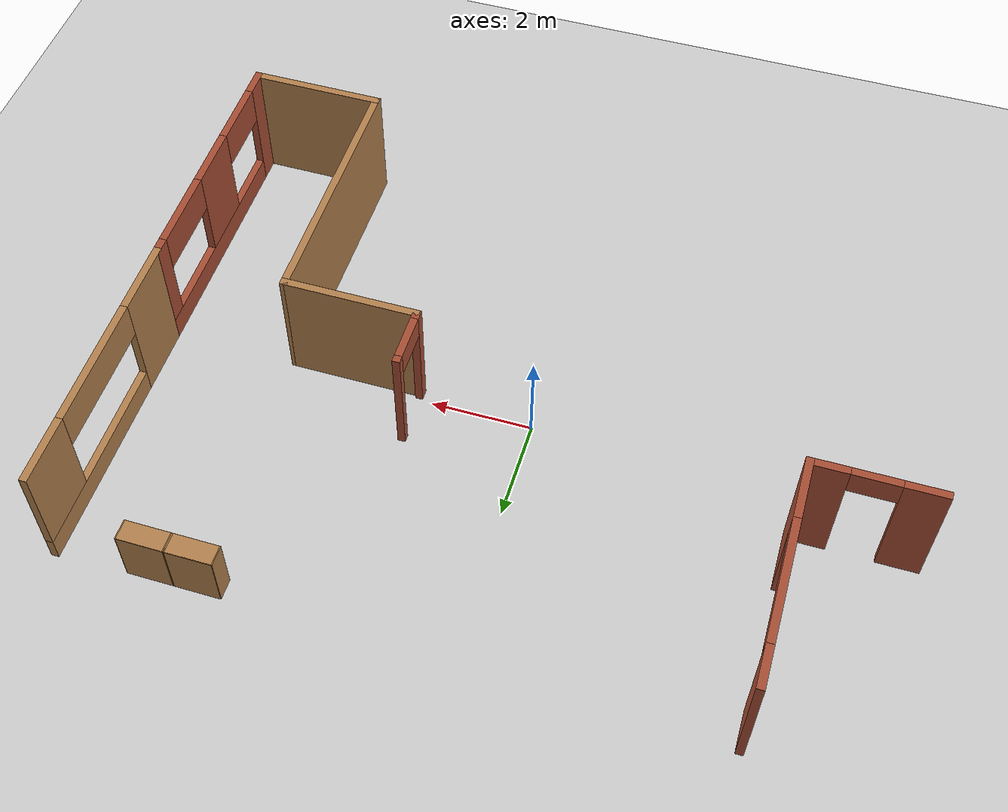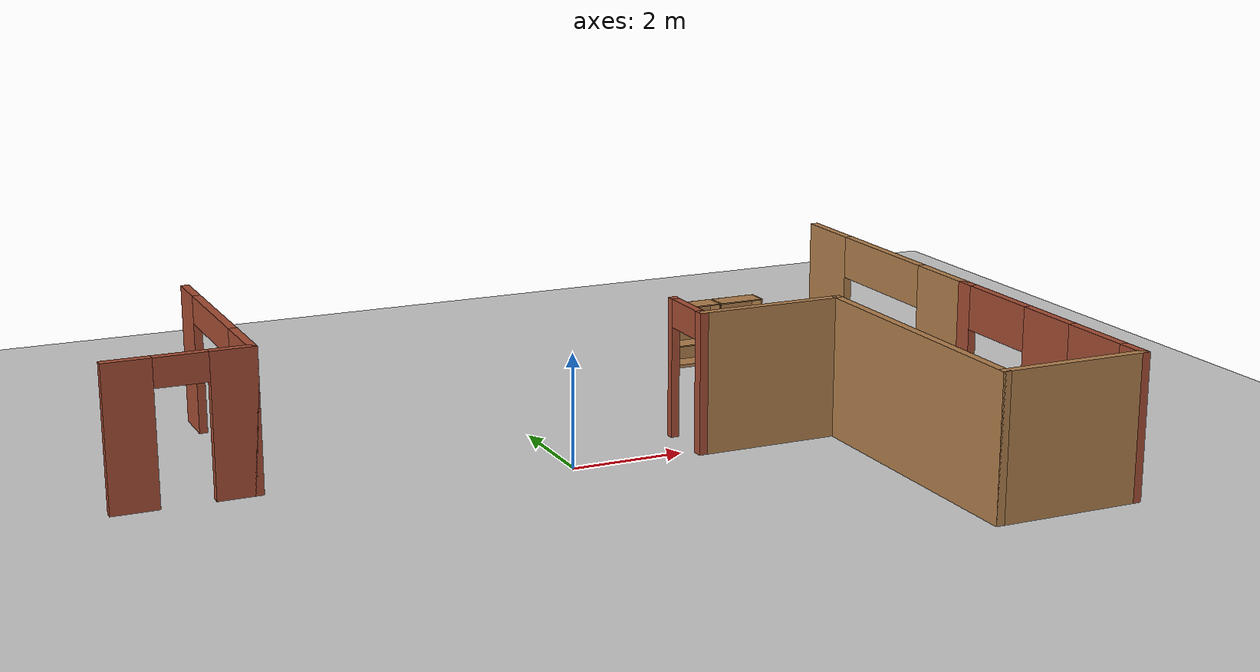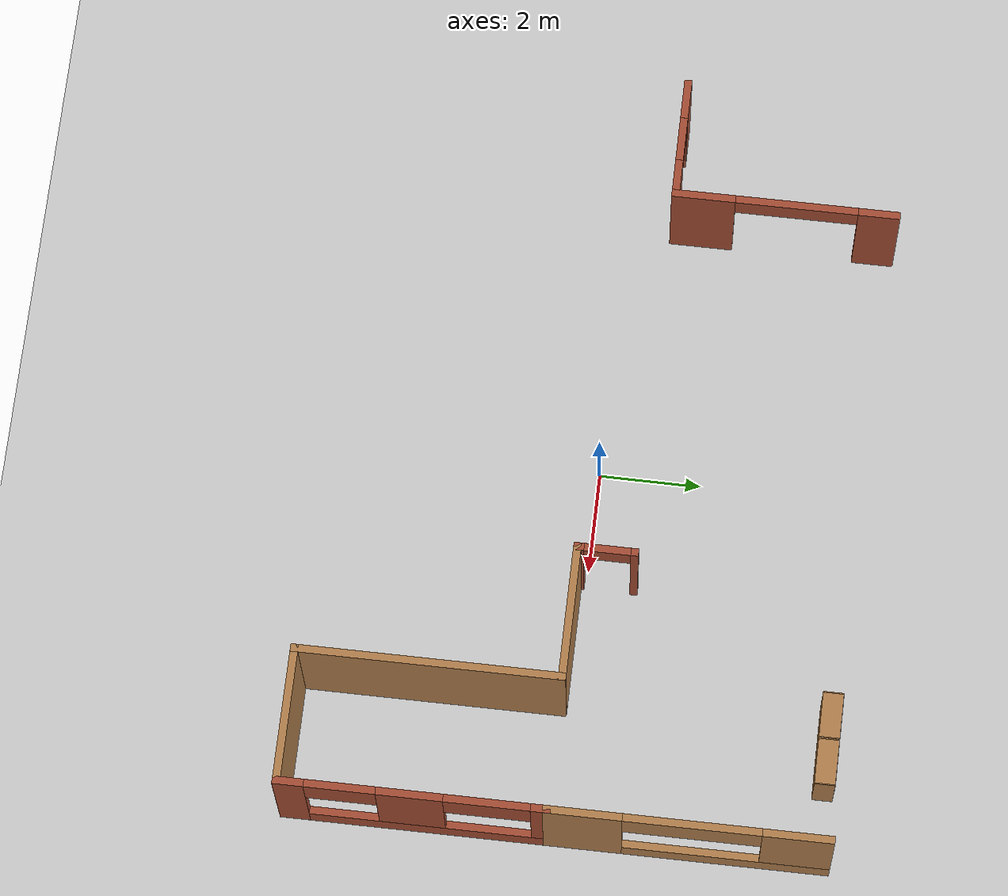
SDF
<sdf version="1.7">
 <world name="simple_house">
  <model name="ground_plane">
   <static>1</static>
   <link name="link">
    <collision name="collision">
     <geometry><plane><normal>0 0 1</normal><size>100 100</size></plane></geometry>
     <surface><friction><ode><mu>100</mu><mu2>50</mu2></ode></friction></surface>
    </collision>
    <visual name="visual">
     <cast_shadows>0</cast_shadows>
     <geometry><plane><normal>0 0 1</normal><size>100 100</size></plane></geometry>
     <material>
      <script><uri>file://media/materials/scripts/gazebo.material</uri><name>Gazebo/Grey</name></script>
     </material>
    </visual>
   </link>
  </model>
  <model name="Wall_91">
   <static>1</static>
   <link name="Wall_91_link">
    <pose>2.29994 0.37506 0 0 0 -1.57091</pose>
    <visual name="Wall_91_Visual_0">
     <pose>-0.551501 0 1.25 0 -0 0</pose>
     <geometry><box><size>0.146998 0.15 2.5</size></box></geometry>
     <material>
      <script><uri>file://media/materials/scripts/gazebo.material</uri><name>Gazebo/Bricks</name></script>
      <ambient>1 1 1 1</ambient>
      <diffuse>1 1 1 1</diffuse>
      <specular>0.2 0.2 0.2 1</specular>
      <emissive>0 0 0 1</emissive>
     </material>
    </visual>
    <visual name="Wall_91_Visual_2">
     <pose>-0.028002 0 2.25 0 -0 0</pose>
     <geometry><box><size>0.9 0.15 0.5</size></box></geometry>
     <material>
      <script><uri>file://media/materials/scripts/gazebo.material</uri><name>Gazebo/Bricks</name></script>
      <ambient>1 1 1 1</ambient>
      <diffuse>1 1 1 1</diffuse>
      <specular>0.2 0.2 0.2 1</specular>
      <emissive>0 0 0 1</emissive>
     </material>
    </visual>
    <visual name="Wall_91_Visual_1">
     <pose>0.523499 0 1.25 0 -0 0</pose>
     <geometry><box><size>0.203002 0.15 2.5</size></box></geometry>
     <material>
      <script><uri>file://media/materials/scripts/gazebo.material</uri><name>Gazebo/Bricks</name></script>
      <ambient>1 1 1 1</ambient>
      <diffuse>1 1 1 1</diffuse>
      <specular>0.2 0.2 0.2 1</specular>
      <emissive>0 0 0 1</emissive>
     </material>
    </visual>
    <collision name="Wall_91_Collision_0">
     <pose>-0.551501 0 1.25 0 -0 0</pose>
     <geometry><box><size>0.146998 0.15 2.5</size></box></geometry>
     <surface>
      <friction>
       <ode><mu>1</mu><mu2>1</mu2><fdir1>0 0 0</fdir1><slip1>0</slip1><slip2>0</slip2></ode>
       <torsional>
        <coefficient>1</coefficient>
        <patch_radius>0</patch_radius>
        <surface_radius>0</surface_radius>
        <use_patch_radius>1</use_patch_radius>
        <ode><slip>0</slip></ode>
       </torsional>
      </friction>
      <bounce><restitution_coefficient>0</restitution_coefficient><threshold>1e+06</threshold></bounce>
      <contact>
       <collide_without_contact>0</collide_without_contact>
       <collide_without_contact_bitmask>1</collide_without_contact_bitmask>
       <collide_bitmask>1</collide_bitmask>
       <ode>
        <soft_cfm>0</soft_cfm>
        <soft_erp>0.2</soft_erp>
        <kp>1e+13</kp>
        <kd>1</kd>
        <max_vel>0.01</max_vel>
        <min_depth>0</min_depth>
       </ode>
       <bullet>
        <split_impulse>1</split_impulse>
        <split_impulse_penetration_threshold>-0.01</split_impulse_penetration_threshold>
        <soft_cfm>0</soft_cfm>
        <soft_erp>0.2</soft_erp>
        <kp>1e+13</kp>
        <kd>1</kd>
       </bullet>
      </contact>
     </surface>
    </collision>
    <collision name="Wall_91_Collision_1">
     <pose>0.523499 0 1.25 0 -0 0</pose>
     <geometry><box><size>0.203002 0.15 2.5</size></box></geometry>
     <surface>
      <friction>
       <ode><mu>1</mu><mu2>1</mu2><fdir1>0 0 0</fdir1><slip1>0</slip1><slip2>0</slip2></ode>
       <torsional>
        <coefficient>1</coefficient>
        <patch_radius>0</patch_radius>
        <surface_radius>0</surface_radius>
        <use_patch_radius>1</use_patch_radius>
        <ode><slip>0</slip></ode>
       </torsional>
      </friction>
      <bounce><restitution_coefficient>0</restitution_coefficient><threshold>1e+06</threshold></bounce>
      <contact>
       <collide_without_contact>0</collide_without_contact>
       <collide_without_contact_bitmask>1</collide_without_contact_bitmask>
       <collide_bitmask>1</collide_bitmask>
       <ode>
        <soft_cfm>0</soft_cfm>
        <soft_erp>0.2</soft_erp>
        <kp>1e+13</kp>
        <kd>1</kd>
        <max_vel>0.01</max_vel>
        <min_depth>0</min_depth>
       </ode>
       <bullet>
        <split_impulse>1</split_impulse>
        <split_impulse_penetration_threshold>-0.01</split_impulse_penetration_threshold>
        <soft_cfm>0</soft_cfm>
        <soft_erp>0.2</soft_erp>
        <kp>1e+13</kp>
        <kd>1</kd>
       </bullet>
      </contact>
     </surface>
    </collision>
    <collision name="Wall_91_Collision_2">
     <pose>-0.028002 0 2.25 0 -0 0</pose>
     <geometry><box><size>0.9 0.15 0.5</size></box></geometry>
     <surface>
      <friction>
       <ode><mu>1</mu><mu2>1</mu2><fdir1>0 0 0</fdir1><slip1>0</slip1><slip2>0</slip2></ode>
       <torsional>
        <coefficient>1</coefficient>
        <patch_radius>0</patch_radius>
        <surface_radius>0</surface_radius>
        <use_patch_radius>1</use_patch_radius>
        <ode><slip>0</slip></ode>
       </torsional>
      </friction>
      <bounce><restitution_coefficient>0</restitution_coefficient><threshold>1e+06</threshold></bounce>
      <contact>
       <collide_without_contact>0</collide_without_contact>
       <collide_without_contact_bitmask>1</collide_without_contact_bitmask>
       <collide_bitmask>1</collide_bitmask>
       <ode>
        <soft_cfm>0</soft_cfm>
        <soft_erp>0.2</soft_erp>
        <kp>1e+13</kp>
        <kd>1</kd>
        <max_vel>0.01</max_vel>
        <min_depth>0</min_depth>
       </ode>
       <bullet>
        <split_impulse>1</split_impulse>
        <split_impulse_penetration_threshold>-0.01</split_impulse_penetration_threshold>
        <soft_cfm>0</soft_cfm>
        <soft_erp>0.2</soft_erp>
        <kp>1e+13</kp>
        <kd>1</kd>
       </bullet>
      </contact>
     </surface>
    </collision>
   </link>
  </model>
  <model name="Wall_92">
   <static>1</static>
   <link name="Wall_92_link">
    <pose>3.59994 -0.17494 0 0 0 -4.6e-05</pose>
    <visual name="Wall_92_Visual">
     <pose>0 0 1.25 0 -0 0</pose>
     <geometry><box><size>2.75 0.15 2.5</size></box></geometry>
     <material>
      <script><uri>file://media/materials/scripts/gazebo.material</uri><name>Gazebo/Wood</name></script>
      <ambient>1 1 1 1</ambient>
      <diffuse>1 1 1 1</diffuse>
      <specular>0.2 0.2 0.2 1</specular>
      <emissive>0 0 0 1</emissive>
     </material>
    </visual>
    <collision name="Wall_92_Collision">
     <pose>0 0 1.25 0 -0 0</pose>
     <geometry><box><size>2.75 0.15 2.5</size></box></geometry>
     <surface>
      <friction>
       <ode><mu>1</mu><mu2>1</mu2><fdir1>0 0 0</fdir1><slip1>0</slip1><slip2>0</slip2></ode>
       <torsional>
        <coefficient>1</coefficient>
        <patch_radius>0</patch_radius>
        <surface_radius>0</surface_radius>
        <use_patch_radius>1</use_patch_radius>
        <ode><slip>0</slip></ode>
       </torsional>
      </friction>
      <bounce><restitution_coefficient>0</restitution_coefficient><threshold>1e+06</threshold></bounce>
      <contact>
       <collide_without_contact>0</collide_without_contact>
       <collide_without_contact_bitmask>1</collide_without_contact_bitmask>
       <collide_bitmask>1</collide_bitmask>
       <ode>
        <soft_cfm>0</soft_cfm>
        <soft_erp>0.2</soft_erp>
        <kp>1e+13</kp>
        <kd>1</kd>
        <max_vel>0.01</max_vel>
        <min_depth>0</min_depth>
       </ode>
       <bullet>
        <split_impulse>1</split_impulse>
        <split_impulse_penetration_threshold>-0.01</split_impulse_penetration_threshold>
        <soft_cfm>0</soft_cfm>
        <soft_erp>0.2</soft_erp>
        <kp>1e+13</kp>
        <kd>1</kd>
       </bullet>
      </contact>
     </surface>
    </collision>
   </link>
  </model>
  <model name="Wall_93">
   <static>1</static>
   <link name="Wall_93_link">
    <pose>4.9 -2.725 0 0 0 -1.5708</pose>
    <visual name="Wall_93_Visual">
     <pose>0 0 1.25 0 -0 0</pose>
     <geometry><box><size>5.25 0.15 2.5</size></box></geometry>
     <material>
      <script><uri>file://media/materials/scripts/gazebo.material</uri><name>Gazebo/Wood</name></script>
      <ambient>1 1 1 1</ambient>
      <diffuse>1 1 1 1</diffuse>
      <specular>0.2 0.2 0.2 1</specular>
      <emissive>0 0 0 1</emissive>
     </material>
    </visual>
    <collision name="Wall_93_Collision">
     <pose>0 0 1.25 0 -0 0</pose>
     <geometry><box><size>5.25 0.15 2.5</size></box></geometry>
     <surface>
      <friction>
       <ode><mu>1</mu><mu2>1</mu2><fdir1>0 0 0</fdir1><slip1>0</slip1><slip2>0</slip2></ode>
       <torsional>
        <coefficient>1</coefficient>
        <patch_radius>0</patch_radius>
        <surface_radius>0</surface_radius>
        <use_patch_radius>1</use_patch_radius>
        <ode><slip>0</slip></ode>
       </torsional>
      </friction>
      <bounce><restitution_coefficient>0</restitution_coefficient><threshold>1e+06</threshold></bounce>
      <contact>
       <collide_without_contact>0</collide_without_contact>
       <collide_without_contact_bitmask>1</collide_without_contact_bitmask>
       <collide_bitmask>1</collide_bitmask>
       <ode>
        <soft_cfm>0</soft_cfm>
        <soft_erp>0.2</soft_erp>
        <kp>1e+13</kp>
        <kd>1</kd>
        <max_vel>0.01</max_vel>
        <min_depth>0</min_depth>
       </ode>
       <bullet>
        <split_impulse>1</split_impulse>
        <split_impulse_penetration_threshold>-0.01</split_impulse_penetration_threshold>
        <soft_cfm>0</soft_cfm>
        <soft_erp>0.2</soft_erp>
        <kp>1e+13</kp>
        <kd>1</kd>
       </bullet>
      </contact>
     </surface>
    </collision>
   </link>
  </model>
  <model name="Wall_94">
   <static>1</static>
   <link name="Wall_94_link">
    <pose>6.2 -5.275 0 0 -0 0</pose>
    <visual name="Wall_94_Visual">
     <pose>0 0 1.25 0 -0 0</pose>
     <geometry><box><size>2.75 0.15 2.5</size></box></geometry>
     <material>
      <script><uri>file://media/materials/scripts/gazebo.material</uri><name>Gazebo/Wood</name></script>
      <ambient>1 1 1 1</ambient>
      <diffuse>1 1 1 1</diffuse>
      <specular>0.2 0.2 0.2 1</specular>
      <emissive>0 0 0 1</emissive>
     </material>
    </visual>
    <collision name="Wall_94_Collision">
     <pose>0 0 1.25 0 -0 0</pose>
     <geometry><box><size>2.75 0.15 2.5</size></box></geometry>
     <surface>
      <friction>
       <ode><mu>1</mu><mu2>1</mu2><fdir1>0 0 0</fdir1><slip1>0</slip1><slip2>0</slip2></ode>
       <torsional>
        <coefficient>1</coefficient>
        <patch_radius>0</patch_radius>
        <surface_radius>0</surface_radius>
        <use_patch_radius>1</use_patch_radius>
        <ode><slip>0</slip></ode>
       </torsional>
      </friction>
      <bounce><restitution_coefficient>0</restitution_coefficient><threshold>1e+06</threshold></bounce>
      <contact>
       <collide_without_contact>0</collide_without_contact>
       <collide_without_contact_bitmask>1</collide_without_contact_bitmask>
       <collide_bitmask>1</collide_bitmask>
       <ode>
        <soft_cfm>0</soft_cfm>
        <soft_erp>0.2</soft_erp>
        <kp>1e+13</kp>
        <kd>1</kd>
        <max_vel>0.01</max_vel>
        <min_depth>0</min_depth>
       </ode>
       <bullet>
        <split_impulse>1</split_impulse>
        <split_impulse_penetration_threshold>-0.01</split_impulse_penetration_threshold>
        <soft_cfm>0</soft_cfm>
        <soft_erp>0.2</soft_erp>
        <kp>1e+13</kp>
        <kd>1</kd>
       </bullet>
      </contact>
     </surface>
    </collision>
   </link>
  </model>
  <model name="Wall_95">
   <static>1</static>
   <link name="Wall_95_link">
    <pose>7.5 -2.725 0 0 -0 1.5708</pose>
    <visual name="Wall_95_Visual_1">
     <pose>0.295715 0 0.25 0 -0 0</pose>
     <geometry><box><size>4.65857 0.15 0.5</size></box></geometry>
     <material>
      <script><uri>file://media/materials/scripts/gazebo.material</uri><name>Gazebo/Bricks</name></script>
      <ambient>1 1 1 1</ambient>
      <diffuse>1 1 1 1</diffuse>
      <specular>0.2 0.2 0.2 1</specular>
      <emissive>0 0 0 1</emissive>
     </material>
    </visual>
    <visual name="Wall_95_Visual_2">
     <pose>-0.036959 0 1.5 0 -0 0</pose>
     <geometry><box><size>1.27522 0.15 2</size></box></geometry>
     <material>
      <script><uri>file://media/materials/scripts/gazebo.material</uri><name>Gazebo/Bricks</name></script>
      <ambient>1 1 1 1</ambient>
      <diffuse>1 1 1 1</diffuse>
      <specular>0.2 0.2 0.2 1</specular>
      <emissive>0 0 0 1</emissive>
     </material>
    </visual>
    <visual name="Wall_95_Visual_3">
     <pose>2.43783 0 1.5 0 -0 0</pose>
     <geometry><box><size>0.374348 0.15 2</size></box></geometry>
     <material>
      <script><uri>file://media/materials/scripts/gazebo.material</uri><name>Gazebo/Bricks</name></script>
      <ambient>1 1 1 1</ambient>
      <diffuse>1 1 1 1</diffuse>
      <specular>0.2 0.2 0.2 1</specular>
      <emissive>0 0 0 1</emissive>
     </material>
    </visual>
    <visual name="Wall_95_Visual_5">
     <pose>1.42565 0 2.1 0 -0 0</pose>
     <geometry><box><size>1.65 0.15 0.8</size></box></geometry>
     <material>
      <script><uri>file://media/materials/scripts/gazebo.material</uri><name>Gazebo/Bricks</name></script>
      <ambient>1 1 1 1</ambient>
      <diffuse>1 1 1 1</diffuse>
      <specular>0.2 0.2 0.2 1</specular>
      <emissive>0 0 0 1</emissive>
     </material>
    </visual>
    <visual name="Wall_95_Visual_4">
     <pose>-1.35407 0 2.1 0 -0 0</pose>
     <geometry><box><size>1.359 0.15 0.8</size></box></geometry>
     <material>
      <script><uri>file://media/materials/scripts/gazebo.material</uri><name>Gazebo/Bricks</name></script>
      <ambient>1 1 1 1</ambient>
      <diffuse>1 1 1 1</diffuse>
      <specular>0.2 0.2 0.2 1</specular>
      <emissive>0 0 0 1</emissive>
     </material>
    </visual>
    <visual name="Wall_95_Visual_0">
     <pose>-2.32929 0 1.25 0 -0 0</pose>
     <geometry><box><size>0.591431 0.15 2.5</size></box></geometry>
     <material>
      <script><uri>file://media/materials/scripts/gazebo.material</uri><name>Gazebo/Bricks</name></script>
      <ambient>1 1 1 1</ambient>
      <diffuse>1 1 1 1</diffuse>
      <specular>0.2 0.2 0.2 1</specular>
      <emissive>0 0 0 1</emissive>
     </material>
    </visual>
    <collision name="Wall_95_Collision_2">
     <pose>-0.036959 0 1.5 0 -0 0</pose>
     <geometry><box><size>1.27522 0.15 2</size></box></geometry>
     <surface>
      <friction>
       <ode><mu>1</mu><mu2>1</mu2><fdir1>0 0 0</fdir1><slip1>0</slip1><slip2>0</slip2></ode>
       <torsional>
        <coefficient>1</coefficient>
        <patch_radius>0</patch_radius>
        <surface_radius>0</surface_radius>
        <use_patch_radius>1</use_patch_radius>
        <ode><slip>0</slip></ode>
       </torsional>
      </friction>
      <bounce><restitution_coefficient>0</restitution_coefficient><threshold>1e+06</threshold></bounce>
      <contact>
       <collide_without_contact>0</collide_without_contact>
       <collide_without_contact_bitmask>1</collide_without_contact_bitmask>
       <collide_bitmask>1</collide_bitmask>
       <ode>
        <soft_cfm>0</soft_cfm>
        <soft_erp>0.2</soft_erp>
        <kp>1e+13</kp>
        <kd>1</kd>
        <max_vel>0.01</max_vel>
        <min_depth>0</min_depth>
       </ode>
       <bullet>
        <split_impulse>1</split_impulse>
        <split_impulse_penetration_threshold>-0.01</split_impulse_penetration_threshold>
        <soft_cfm>0</soft_cfm>
        <soft_erp>0.2</soft_erp>
        <kp>1e+13</kp>
        <kd>1</kd>
       </bullet>
      </contact>
     </surface>
    </collision>
    <collision name="Wall_95_Collision_3">
     <pose>2.43783 0 1.5 0 -0 0</pose>
     <geometry><box><size>0.374348 0.15 2</size></box></geometry>
     <surface>
      <friction>
       <ode><mu>1</mu><mu2>1</mu2><fdir1>0 0 0</fdir1><slip1>0</slip1><slip2>0</slip2></ode>
       <torsional>
        <coefficient>1</coefficient>
        <patch_radius>0</patch_radius>
        <surface_radius>0</surface_radius>
        <use_patch_radius>1</use_patch_radius>
        <ode><slip>0</slip></ode>
       </torsional>
      </friction>
      <bounce><restitution_coefficient>0</restitution_coefficient><threshold>1e+06</threshold></bounce>
      <contact>
       <collide_without_contact>0</collide_without_contact>
       <collide_without_contact_bitmask>1</collide_without_contact_bitmask>
       <collide_bitmask>1</collide_bitmask>
       <ode>
        <soft_cfm>0</soft_cfm>
        <soft_erp>0.2</soft_erp>
        <kp>1e+13</kp>
        <kd>1</kd>
        <max_vel>0.01</max_vel>
        <min_depth>0</min_depth>
       </ode>
       <bullet>
        <split_impulse>1</split_impulse>
        <split_impulse_penetration_threshold>-0.01</split_impulse_penetration_threshold>
        <soft_cfm>0</soft_cfm>
        <soft_erp>0.2</soft_erp>
        <kp>1e+13</kp>
        <kd>1</kd>
       </bullet>
      </contact>
     </surface>
    </collision>
    <collision name="Wall_95_Collision_5">
     <pose>1.42565 0 2.1 0 -0 0</pose>
     <geometry><box><size>1.65 0.15 0.8</size></box></geometry>
     <surface>
      <friction>
       <ode><mu>1</mu><mu2>1</mu2><fdir1>0 0 0</fdir1><slip1>0</slip1><slip2>0</slip2></ode>
       <torsional>
        <coefficient>1</coefficient>
        <patch_radius>0</patch_radius>
        <surface_radius>0</surface_radius>
        <use_patch_radius>1</use_patch_radius>
        <ode><slip>0</slip></ode>
       </torsional>
      </friction>
      <bounce><restitution_coefficient>0</restitution_coefficient><threshold>1e+06</threshold></bounce>
      <contact>
       <collide_without_contact>0</collide_without_contact>
       <collide_without_contact_bitmask>1</collide_without_contact_bitmask>
       <collide_bitmask>1</collide_bitmask>
       <ode>
        <soft_cfm>0</soft_cfm>
        <soft_erp>0.2</soft_erp>
        <kp>1e+13</kp>
        <kd>1</kd>
        <max_vel>0.01</max_vel>
        <min_depth>0</min_depth>
       </ode>
       <bullet>
        <split_impulse>1</split_impulse>
        <split_impulse_penetration_threshold>-0.01</split_impulse_penetration_threshold>
        <soft_cfm>0</soft_cfm>
        <soft_erp>0.2</soft_erp>
        <kp>1e+13</kp>
        <kd>1</kd>
       </bullet>
      </contact>
     </surface>
    </collision>
    <collision name="Wall_95_Collision_0">
     <pose>-2.32929 0 1.25 0 -0 0</pose>
     <geometry><box><size>0.591431 0.15 2.5</size></box></geometry>
     <surface>
      <friction>
       <ode><mu>1</mu><mu2>1</mu2><fdir1>0 0 0</fdir1><slip1>0</slip1><slip2>0</slip2></ode>
       <torsional>
        <coefficient>1</coefficient>
        <patch_radius>0</patch_radius>
        <surface_radius>0</surface_radius>
        <use_patch_radius>1</use_patch_radius>
        <ode><slip>0</slip></ode>
       </torsional>
      </friction>
      <bounce><restitution_coefficient>0</restitution_coefficient><threshold>1e+06</threshold></bounce>
      <contact>
       <collide_without_contact>0</collide_without_contact>
       <collide_without_contact_bitmask>1</collide_without_contact_bitmask>
       <collide_bitmask>1</collide_bitmask>
       <ode>
        <soft_cfm>0</soft_cfm>
        <soft_erp>0.2</soft_erp>
        <kp>1e+13</kp>
        <kd>1</kd>
        <max_vel>0.01</max_vel>
        <min_depth>0</min_depth>
       </ode>
       <bullet>
        <split_impulse>1</split_impulse>
        <split_impulse_penetration_threshold>-0.01</split_impulse_penetration_threshold>
        <soft_cfm>0</soft_cfm>
        <soft_erp>0.2</soft_erp>
        <kp>1e+13</kp>
        <kd>1</kd>
       </bullet>
      </contact>
     </surface>
    </collision>
    <collision name="Wall_95_Collision_1">
     <pose>0.295715 0 0.25 0 -0 0</pose>
     <geometry><box><size>4.65857 0.15 0.5</size></box></geometry>
     <surface>
      <friction>
       <ode><mu>1</mu><mu2>1</mu2><fdir1>0 0 0</fdir1><slip1>0</slip1><slip2>0</slip2></ode>
       <torsional>
        <coefficient>1</coefficient>
        <patch_radius>0</patch_radius>
        <surface_radius>0</surface_radius>
        <use_patch_radius>1</use_patch_radius>
        <ode><slip>0</slip></ode>
       </torsional>
      </friction>
      <bounce><restitution_coefficient>0</restitution_coefficient><threshold>1e+06</threshold></bounce>
      <contact>
       <collide_without_contact>0</collide_without_contact>
       <collide_without_contact_bitmask>1</collide_without_contact_bitmask>
       <collide_bitmask>1</collide_bitmask>
       <ode>
        <soft_cfm>0</soft_cfm>
        <soft_erp>0.2</soft_erp>
        <kp>1e+13</kp>
        <kd>1</kd>
        <max_vel>0.01</max_vel>
        <min_depth>0</min_depth>
       </ode>
       <bullet>
        <split_impulse>1</split_impulse>
        <split_impulse_penetration_threshold>-0.01</split_impulse_penetration_threshold>
        <soft_cfm>0</soft_cfm>
        <soft_erp>0.2</soft_erp>
        <kp>1e+13</kp>
        <kd>1</kd>
       </bullet>
      </contact>
     </surface>
    </collision>
    <collision name="Wall_95_Collision_4">
     <pose>-1.35407 0 2.1 0 -0 0</pose>
     <geometry><box><size>1.359 0.15 0.8</size></box></geometry>
     <surface>
      <friction>
       <ode><mu>1</mu><mu2>1</mu2><fdir1>0 0 0</fdir1><slip1>0</slip1><slip2>0</slip2></ode>
       <torsional>
        <coefficient>1</coefficient>
        <patch_radius>0</patch_radius>
        <surface_radius>0</surface_radius>
        <use_patch_radius>1</use_patch_radius>
        <ode><slip>0</slip></ode>
       </torsional>
      </friction>
      <bounce><restitution_coefficient>0</restitution_coefficient><threshold>1e+06</threshold></bounce>
      <contact>
       <collide_without_contact>0</collide_without_contact>
       <collide_without_contact_bitmask>1</collide_without_contact_bitmask>
       <collide_bitmask>1</collide_bitmask>
       <ode>
        <soft_cfm>0</soft_cfm>
        <soft_erp>0.2</soft_erp>
        <kp>1e+13</kp>
        <kd>1</kd>
        <max_vel>0.01</max_vel>
        <min_depth>0</min_depth>
       </ode>
       <bullet>
        <split_impulse>1</split_impulse>
        <split_impulse_penetration_threshold>-0.01</split_impulse_penetration_threshold>
        <soft_cfm>0</soft_cfm>
        <soft_erp>0.2</soft_erp>
        <kp>1e+13</kp>
        <kd>1</kd>
       </bullet>
      </contact>
     </surface>
    </collision>
   </link>
  </model>
  <model name="Wall_96">
   <static>1</static>
   <link name="Wall_96_link">
    <pose>7.5 2.5 0 0 -0 1.5708</pose>
    <visual name="Wall_96_Visual_1">
     <pose>0.75174 0 0.25 0 -0 0</pose>
     <geometry><box><size>3.99652 0.15 0.5</size></box></geometry>
     <material>
      <script><uri>file://media/materials/scripts/gazebo.material</uri><name>Gazebo/Wood</name></script>
      <ambient>1 1 1 1</ambient>
      <diffuse>1 1 1 1</diffuse>
      <specular>0.2 0.2 0.2 1</specular>
      <emissive>0 0 0 1</emissive>
     </material>
    </visual>
    <visual name="Wall_96_Visual_2">
     <pose>2.06924 0 1.5 0 -0 0</pose>
     <geometry><box><size>1.36152 0.15 2</size></box></geometry>
     <material>
      <script><uri>file://media/materials/scripts/gazebo.material</uri><name>Gazebo/Wood</name></script>
      <ambient>1 1 1 1</ambient>
      <diffuse>1 1 1 1</diffuse>
      <specular>0.2 0.2 0.2 1</specular>
      <emissive>0 0 0 1</emissive>
     </material>
    </visual>
    <visual name="Wall_96_Visual_3">
     <pose>0.070981 0 2.1 0 -0 0</pose>
     <geometry><box><size>2.635 0.15 0.8</size></box></geometry>
     <material>
      <script><uri>file://media/materials/scripts/gazebo.material</uri><name>Gazebo/Wood</name></script>
      <ambient>1 1 1 1</ambient>
      <diffuse>1 1 1 1</diffuse>
      <specular>0.2 0.2 0.2 1</specular>
      <emissive>0 0 0 1</emissive>
     </material>
    </visual>
    <visual name="Wall_96_Visual_0">
     <pose>-1.99826 0 1.25 0 -0 0</pose>
     <geometry><box><size>1.50348 0.15 2.5</size></box></geometry>
     <material>
      <script><uri>file://media/materials/scripts/gazebo.material</uri><name>Gazebo/Wood</name></script>
      <ambient>1 1 1 1</ambient>
      <diffuse>1 1 1 1</diffuse>
      <specular>0.2 0.2 0.2 1</specular>
      <emissive>0 0 0 1</emissive>
     </material>
    </visual>
    <collision name="Wall_96_Collision_2">
     <pose>2.06924 0 1.5 0 -0 0</pose>
     <geometry><box><size>1.36152 0.15 2</size></box></geometry>
     <surface>
      <friction>
       <ode><mu>1</mu><mu2>1</mu2><fdir1>0 0 0</fdir1><slip1>0</slip1><slip2>0</slip2></ode>
       <torsional>
        <coefficient>1</coefficient>
        <patch_radius>0</patch_radius>
        <surface_radius>0</surface_radius>
        <use_patch_radius>1</use_patch_radius>
        <ode><slip>0</slip></ode>
       </torsional>
      </friction>
      <bounce><restitution_coefficient>0</restitution_coefficient><threshold>1e+06</threshold></bounce>
      <contact>
       <collide_without_contact>0</collide_without_contact>
       <collide_without_contact_bitmask>1</collide_without_contact_bitmask>
       <collide_bitmask>1</collide_bitmask>
       <ode>
        <soft_cfm>0</soft_cfm>
        <soft_erp>0.2</soft_erp>
        <kp>1e+13</kp>
        <kd>1</kd>
        <max_vel>0.01</max_vel>
        <min_depth>0</min_depth>
       </ode>
       <bullet>
        <split_impulse>1</split_impulse>
        <split_impulse_penetration_threshold>-0.01</split_impulse_penetration_threshold>
        <soft_cfm>0</soft_cfm>
        <soft_erp>0.2</soft_erp>
        <kp>1e+13</kp>
        <kd>1</kd>
       </bullet>
      </contact>
     </surface>
    </collision>
    <collision name="Wall_96_Collision_0">
     <pose>-1.99826 0 1.25 0 -0 0</pose>
     <geometry><box><size>1.50348 0.15 2.5</size></box></geometry>
     <surface>
      <friction>
       <ode><mu>1</mu><mu2>1</mu2><fdir1>0 0 0</fdir1><slip1>0</slip1><slip2>0</slip2></ode>
       <torsional>
        <coefficient>1</coefficient>
        <patch_radius>0</patch_radius>
        <surface_radius>0</surface_radius>
        <use_patch_radius>1</use_patch_radius>
        <ode><slip>0</slip></ode>
       </torsional>
      </friction>
      <bounce><restitution_coefficient>0</restitution_coefficient><threshold>1e+06</threshold></bounce>
      <contact>
       <collide_without_contact>0</collide_without_contact>
       <collide_without_contact_bitmask>1</collide_without_contact_bitmask>
       <collide_bitmask>1</collide_bitmask>
       <ode>
        <soft_cfm>0</soft_cfm>
        <soft_erp>0.2</soft_erp>
        <kp>1e+13</kp>
        <kd>1</kd>
        <max_vel>0.01</max_vel>
        <min_depth>0</min_depth>
       </ode>
       <bullet>
        <split_impulse>1</split_impulse>
        <split_impulse_penetration_threshold>-0.01</split_impulse_penetration_threshold>
        <soft_cfm>0</soft_cfm>
        <soft_erp>0.2</soft_erp>
        <kp>1e+13</kp>
        <kd>1</kd>
       </bullet>
      </contact>
     </surface>
    </collision>
    <collision name="Wall_96_Collision_3">
     <pose>0.070981 0 2.1 0 -0 0</pose>
     <geometry><box><size>2.635 0.15 0.8</size></box></geometry>
     <surface>
      <friction>
       <ode><mu>1</mu><mu2>1</mu2><fdir1>0 0 0</fdir1><slip1>0</slip1><slip2>0</slip2></ode>
       <torsional>
        <coefficient>1</coefficient>
        <patch_radius>0</patch_radius>
        <surface_radius>0</surface_radius>
        <use_patch_radius>1</use_patch_radius>
        <ode><slip>0</slip></ode>
       </torsional>
      </friction>
      <bounce><restitution_coefficient>0</restitution_coefficient><threshold>1e+06</threshold></bounce>
      <contact>
       <collide_without_contact>0</collide_without_contact>
       <collide_without_contact_bitmask>1</collide_without_contact_bitmask>
       <collide_bitmask>1</collide_bitmask>
       <ode>
        <soft_cfm>0</soft_cfm>
        <soft_erp>0.2</soft_erp>
        <kp>1e+13</kp>
        <kd>1</kd>
        <max_vel>0.01</max_vel>
        <min_depth>0</min_depth>
       </ode>
       <bullet>
        <split_impulse>1</split_impulse>
        <split_impulse_penetration_threshold>-0.01</split_impulse_penetration_threshold>
        <soft_cfm>0</soft_cfm>
        <soft_erp>0.2</soft_erp>
        <kp>1e+13</kp>
        <kd>1</kd>
       </bullet>
      </contact>
     </surface>
    </collision>
    <collision name="Wall_96_Collision_1">
     <pose>0.75174 0 0.25 0 -0 0</pose>
     <geometry><box><size>3.99652 0.15 0.5</size></box></geometry>
     <surface>
      <friction>
       <ode><mu>1</mu><mu2>1</mu2><fdir1>0 0 0</fdir1><slip1>0</slip1><slip2>0</slip2></ode>
       <torsional>
        <coefficient>1</coefficient>
        <patch_radius>0</patch_radius>
        <surface_radius>0</surface_radius>
        <use_patch_radius>1</use_patch_radius>
        <ode><slip>0</slip></ode>
       </torsional>
      </friction>
      <bounce><restitution_coefficient>0</restitution_coefficient><threshold>1e+06</threshold></bounce>
      <contact>
       <collide_without_contact>0</collide_without_contact>
       <collide_without_contact_bitmask>1</collide_without_contact_bitmask>
       <collide_bitmask>1</collide_bitmask>
       <ode>
        <soft_cfm>0</soft_cfm>
        <soft_erp>0.2</soft_erp>
        <kp>1e+13</kp>
        <kd>1</kd>
        <max_vel>0.01</max_vel>
        <min_depth>0</min_depth>
       </ode>
       <bullet>
        <split_impulse>1</split_impulse>
        <split_impulse_penetration_threshold>-0.01</split_impulse_penetration_threshold>
        <soft_cfm>0</soft_cfm>
        <soft_erp>0.2</soft_erp>
        <kp>1e+13</kp>
        <kd>1</kd>
       </bullet>
      </contact>
     </surface>
    </collision>
   </link>
  </model>
  <model name="Wall_98">
   <static>1</static>
   <link name="Wall_98_link">
    <pose>-6.325 0.925 0 0 -0 0</pose>
    <visual name="Wall_98_Visual_2">
     <pose>0.015777 0 2.25 0 -0 0</pose>
     <geometry><box><size>0.9 0.15 0.5</size></box></geometry>
     <material>
      <script><uri>file://media/materials/scripts/gazebo.material</uri><name>Gazebo/Bricks</name></script>
      <ambient>1 1 1 1</ambient>
      <diffuse>1 1 1 1</diffuse>
      <specular>0.2 0.2 0.2 1</specular>
      <emissive>0 0 0 1</emissive>
     </material>
    </visual>
    <visual name="Wall_98_Visual_1">
     <pose>0.857889 0 1.25 0 -0 0</pose>
     <geometry><box><size>0.784223 0.15 2.5</size></box></geometry>
     <material>
      <script><uri>file://media/materials/scripts/gazebo.material</uri><name>Gazebo/Bricks</name></script>
      <ambient>1 1 1 1</ambient>
      <diffuse>1 1 1 1</diffuse>
      <specular>0.2 0.2 0.2 1</specular>
      <emissive>0 0 0 1</emissive>
     </material>
    </visual>
    <visual name="Wall_98_Visual_0">
     <pose>-0.842111 0 1.25 0 -0 0</pose>
     <geometry><box><size>0.815777 0.15 2.5</size></box></geometry>
     <material>
      <script><uri>file://media/materials/scripts/gazebo.material</uri><name>Gazebo/Bricks</name></script>
      <ambient>1 1 1 1</ambient>
      <diffuse>1 1 1 1</diffuse>
      <specular>0.2 0.2 0.2 1</specular>
      <emissive>0 0 0 1</emissive>
     </material>
    </visual>
    <collision name="Wall_98_Collision_0">
     <pose>-0.842111 0 1.25 0 -0 0</pose>
     <geometry><box><size>0.815777 0.15 2.5</size></box></geometry>
     <surface>
      <friction>
       <ode><mu>1</mu><mu2>1</mu2><fdir1>0 0 0</fdir1><slip1>0</slip1><slip2>0</slip2></ode>
       <torsional>
        <coefficient>1</coefficient>
        <patch_radius>0</patch_radius>
        <surface_radius>0</surface_radius>
        <use_patch_radius>1</use_patch_radius>
        <ode><slip>0</slip></ode>
       </torsional>
      </friction>
      <bounce><restitution_coefficient>0</restitution_coefficient><threshold>1e+06</threshold></bounce>
      <contact>
       <collide_without_contact>0</collide_without_contact>
       <collide_without_contact_bitmask>1</collide_without_contact_bitmask>
       <collide_bitmask>1</collide_bitmask>
       <ode>
        <soft_cfm>0</soft_cfm>
        <soft_erp>0.2</soft_erp>
        <kp>1e+13</kp>
        <kd>1</kd>
        <max_vel>0.01</max_vel>
        <min_depth>0</min_depth>
       </ode>
       <bullet>
        <split_impulse>1</split_impulse>
        <split_impulse_penetration_threshold>-0.01</split_impulse_penetration_threshold>
        <soft_cfm>0</soft_cfm>
        <soft_erp>0.2</soft_erp>
        <kp>1e+13</kp>
        <kd>1</kd>
       </bullet>
      </contact>
     </surface>
    </collision>
    <collision name="Wall_98_Collision_1">
     <pose>0.857889 0 1.25 0 -0 0</pose>
     <geometry><box><size>0.784223 0.15 2.5</size></box></geometry>
     <surface>
      <friction>
       <ode><mu>1</mu><mu2>1</mu2><fdir1>0 0 0</fdir1><slip1>0</slip1><slip2>0</slip2></ode>
       <torsional>
        <coefficient>1</coefficient>
        <patch_radius>0</patch_radius>
        <surface_radius>0</surface_radius>
        <use_patch_radius>1</use_patch_radius>
        <ode><slip>0</slip></ode>
       </torsional>
      </friction>
      <bounce><restitution_coefficient>0</restitution_coefficient><threshold>1e+06</threshold></bounce>
      <contact>
       <collide_without_contact>0</collide_without_contact>
       <collide_without_contact_bitmask>1</collide_without_contact_bitmask>
       <collide_bitmask>1</collide_bitmask>
       <ode>
        <soft_cfm>0</soft_cfm>
        <soft_erp>0.2</soft_erp>
        <kp>1e+13</kp>
        <kd>1</kd>
        <max_vel>0.01</max_vel>
        <min_depth>0</min_depth>
       </ode>
       <bullet>
        <split_impulse>1</split_impulse>
        <split_impulse_penetration_threshold>-0.01</split_impulse_penetration_threshold>
        <soft_cfm>0</soft_cfm>
        <soft_erp>0.2</soft_erp>
        <kp>1e+13</kp>
        <kd>1</kd>
       </bullet>
      </contact>
     </surface>
    </collision>
    <collision name="Wall_98_Collision_2">
     <pose>0.015777 0 2.25 0 -0 0</pose>
     <geometry><box><size>0.9 0.15 0.5</size></box></geometry>
     <surface>
      <friction>
       <ode><mu>1</mu><mu2>1</mu2><fdir1>0 0 0</fdir1><slip1>0</slip1><slip2>0</slip2></ode>
       <torsional>
        <coefficient>1</coefficient>
        <patch_radius>0</patch_radius>
        <surface_radius>0</surface_radius>
        <use_patch_radius>1</use_patch_radius>
        <ode><slip>0</slip></ode>
       </torsional>
      </friction>
      <bounce><restitution_coefficient>0</restitution_coefficient><threshold>1e+06</threshold></bounce>
      <contact>
       <collide_without_contact>0</collide_without_contact>
       <collide_without_contact_bitmask>1</collide_without_contact_bitmask>
       <collide_bitmask>1</collide_bitmask>
       <ode>
        <soft_cfm>0</soft_cfm>
        <soft_erp>0.2</soft_erp>
        <kp>1e+13</kp>
        <kd>1</kd>
        <max_vel>0.01</max_vel>
        <min_depth>0</min_depth>
       </ode>
       <bullet>
        <split_impulse>1</split_impulse>
        <split_impulse_penetration_threshold>-0.01</split_impulse_penetration_threshold>
        <soft_cfm>0</soft_cfm>
        <soft_erp>0.2</soft_erp>
        <kp>1e+13</kp>
        <kd>1</kd>
       </bullet>
      </contact>
     </surface>
    </collision>
   </link>
  </model>
  <model name="Wall_99">
   <static>1</static>
   <link name="Wall_99_link">
    <pose>-5.15 3.1 0 0 -0 1.5708</pose>
    <visual name="Wall_99_Visual_0">
     <pose>-1.62116 0 1.25 0 -0 0</pose>
     <geometry><box><size>1.25768 0.15 2.5</size></box></geometry>
     <material>
      <script><uri>file://media/materials/scripts/gazebo.material</uri><name>Gazebo/Bricks</name></script>
      <ambient>1 1 1 1</ambient>
      <diffuse>1 1 1 1</diffuse>
      <specular>0.2 0.2 0.2 1</specular>
      <emissive>0 0 0 1</emissive>
     </material>
    </visual>
    <visual name="Wall_99_Visual_2">
     <pose>0.215786 0 2.25 0 -0 0</pose>
     <geometry><box><size>2.41621 0.15 0.5</size></box></geometry>
     <material>
      <script><uri>file://media/materials/scripts/gazebo.material</uri><name>Gazebo/Bricks</name></script>
      <ambient>1 1 1 1</ambient>
      <diffuse>1 1 1 1</diffuse>
      <specular>0.2 0.2 0.2 1</specular>
      <emissive>0 0 0 1</emissive>
     </material>
    </visual>
    <visual name="Wall_99_Visual_1">
     <pose>1.83695 0 1.25 0 -0 0</pose>
     <geometry><box><size>0.826108 0.15 2.5</size></box></geometry>
     <material>
      <script><uri>file://media/materials/scripts/gazebo.material</uri><name>Gazebo/Bricks</name></script>
      <ambient>1 1 1 1</ambient>
      <diffuse>1 1 1 1</diffuse>
      <specular>0.2 0.2 0.2 1</specular>
      <emissive>0 0 0 1</emissive>
     </material>
    </visual>
    <collision name="Wall_99_Collision_0">
     <pose>-1.62116 0 1.25 0 -0 0</pose>
     <geometry><box><size>1.25768 0.15 2.5</size></box></geometry>
     <surface>
      <friction>
       <ode><mu>1</mu><mu2>1</mu2><fdir1>0 0 0</fdir1><slip1>0</slip1><slip2>0</slip2></ode>
       <torsional>
        <coefficient>1</coefficient>
        <patch_radius>0</patch_radius>
        <surface_radius>0</surface_radius>
        <use_patch_radius>1</use_patch_radius>
        <ode><slip>0</slip></ode>
       </torsional>
      </friction>
      <bounce><restitution_coefficient>0</restitution_coefficient><threshold>1e+06</threshold></bounce>
      <contact>
       <collide_without_contact>0</collide_without_contact>
       <collide_without_contact_bitmask>1</collide_without_contact_bitmask>
       <collide_bitmask>1</collide_bitmask>
       <ode>
        <soft_cfm>0</soft_cfm>
        <soft_erp>0.2</soft_erp>
        <kp>1e+13</kp>
        <kd>1</kd>
        <max_vel>0.01</max_vel>
        <min_depth>0</min_depth>
       </ode>
       <bullet>
        <split_impulse>1</split_impulse>
        <split_impulse_penetration_threshold>-0.01</split_impulse_penetration_threshold>
        <soft_cfm>0</soft_cfm>
        <soft_erp>0.2</soft_erp>
        <kp>1e+13</kp>
        <kd>1</kd>
       </bullet>
      </contact>
     </surface>
    </collision>
    <collision name="Wall_99_Collision_1">
     <pose>1.83695 0 1.25 0 -0 0</pose>
     <geometry><box><size>0.826108 0.15 2.5</size></box></geometry>
     <surface>
      <friction>
       <ode><mu>1</mu><mu2>1</mu2><fdir1>0 0 0</fdir1><slip1>0</slip1><slip2>0</slip2></ode>
       <torsional>
        <coefficient>1</coefficient>
        <patch_radius>0</patch_radius>
        <surface_radius>0</surface_radius>
        <use_patch_radius>1</use_patch_radius>
        <ode><slip>0</slip></ode>
       </torsional>
      </friction>
      <bounce><restitution_coefficient>0</restitution_coefficient><threshold>1e+06</threshold></bounce>
      <contact>
       <collide_without_contact>0</collide_without_contact>
       <collide_without_contact_bitmask>1</collide_without_contact_bitmask>
       <collide_bitmask>1</collide_bitmask>
       <ode>
        <soft_cfm>0</soft_cfm>
        <soft_erp>0.2</soft_erp>
        <kp>1e+13</kp>
        <kd>1</kd>
        <max_vel>0.01</max_vel>
        <min_depth>0</min_depth>
       </ode>
       <bullet>
        <split_impulse>1</split_impulse>
        <split_impulse_penetration_threshold>-0.01</split_impulse_penetration_threshold>
        <soft_cfm>0</soft_cfm>
        <soft_erp>0.2</soft_erp>
        <kp>1e+13</kp>
        <kd>1</kd>
       </bullet>
      </contact>
     </surface>
    </collision>
    <collision name="Wall_99_Collision_2">
     <pose>0.215786 0 2.25 0 -0 0</pose>
     <geometry><box><size>2.41621 0.15 0.5</size></box></geometry>
     <surface>
      <friction>
       <ode><mu>1</mu><mu2>1</mu2><fdir1>0 0 0</fdir1><slip1>0</slip1><slip2>0</slip2></ode>
       <torsional>
        <coefficient>1</coefficient>
        <patch_radius>0</patch_radius>
        <surface_radius>0</surface_radius>
        <use_patch_radius>1</use_patch_radius>
        <ode><slip>0</slip></ode>
       </torsional>
      </friction>
      <bounce><restitution_coefficient>0</restitution_coefficient><threshold>1e+06</threshold></bounce>
      <contact>
       <collide_without_contact>0</collide_without_contact>
       <collide_without_contact_bitmask>1</collide_without_contact_bitmask>
       <collide_bitmask>1</collide_bitmask>
       <ode>
        <soft_cfm>0</soft_cfm>
        <soft_erp>0.2</soft_erp>
        <kp>1e+13</kp>
        <kd>1</kd>
        <max_vel>0.01</max_vel>
        <min_depth>0</min_depth>
       </ode>
       <bullet>
        <split_impulse>1</split_impulse>
        <split_impulse_penetration_threshold>-0.01</split_impulse_penetration_threshold>
        <soft_cfm>0</soft_cfm>
        <soft_erp>0.2</soft_erp>
        <kp>1e+13</kp>
        <kd>1</kd>
       </bullet>
      </contact>
     </surface>
    </collision>
   </link>
  </model>
  <model name="bookshelf_0">
   <static>1</static>
   <link name="link">
    <inertial><mass>1</mass></inertial>
    <collision name="back">
     <pose>0 0.005 0.6 0 -0 0</pose>
     <geometry><box><size>0.9 0.01 1.2</size></box></geometry>
    </collision>
    <visual name="visual1">
     <pose>0 0.005 0.6 0 -0 0</pose>
     <geometry><box><size>0.9 0.01 1.2</size></box></geometry>
     <material>
      <script><uri>file://media/materials/scripts/gazebo.material</uri><name>Gazebo/Wood</name></script>
     </material>
    </visual>
    <collision name="left_side">
     <pose>0.45 -0.195 0.6 0 -0 0</pose>
     <geometry><box><size>0.02 0.4 1.2</size></box></geometry>
    </collision>
    <visual name="visual2">
     <pose>0.45 -0.195 0.6 0 -0 0</pose>
     <geometry><box><size>0.02 0.4 1.2</size></box></geometry>
     <material>
      <script><uri>file://media/materials/scripts/gazebo.material</uri><name>Gazebo/Wood</name></script>
     </material>
    </visual>
    <collision name="right_side">
     <pose>-0.45 -0.195 0.6 0 -0 0</pose>
     <geometry><box><size>0.02 0.4 1.2</size></box></geometry>
    </collision>
    <visual name="visual3">
     <pose>-0.45 -0.195 0.6 0 -0 0</pose>
     <geometry><box><size>0.02 0.4 1.2</size></box></geometry>
     <material>
      <script><uri>file://media/materials/scripts/gazebo.material</uri><name>Gazebo/Wood</name></script>
     </material>
    </visual>
    <collision name="bottom">
     <pose>0 -0.195 0.03 0 -0 0</pose>
     <geometry><box><size>0.88 0.4 0.06</size></box></geometry>
    </collision>
    <visual name="visual4">
     <pose>0 -0.195 0.03 0 -0 0</pose>
     <geometry><box><size>0.88 0.4 0.06</size></box></geometry>
     <material>
      <script><uri>file://media/materials/scripts/gazebo.material</uri><name>Gazebo/Wood</name></script>
     </material>
    </visual>
    <collision name="top">
     <pose>0 -0.195 1.19 0 -0 0</pose>
     <geometry><box><size>0.88 0.4 0.02</size></box></geometry>
    </collision>
    <visual name="visual5">
     <pose>0 -0.195 1.19 0 -0 0</pose>
     <geometry><box><size>0.88 0.4 0.02</size></box></geometry>
     <material>
      <script><uri>file://media/materials/scripts/gazebo.material</uri><name>Gazebo/Wood</name></script>
     </material>
    </visual>
    <collision name="low_shelf">
     <pose>0 -0.195 0.43 0 -0 0</pose>
     <geometry><box><size>0.88 0.4 0.02</size></box></geometry>
    </collision>
    <visual name="visual6">
     <pose>0 -0.195 0.43 0 -0 0</pose>
     <geometry><box><size>0.88 0.4 0.02</size></box></geometry>
     <material>
      <script><uri>file://media/materials/scripts/gazebo.material</uri><name>Gazebo/Wood</name></script>
     </material>
    </visual>
    <collision name="high_shelf">
     <pose>0 -0.195 0.8 0 -0 0</pose>
     <geometry><box><size>0.88 0.4 0.02</size></box></geometry>
    </collision>
    <visual name="visual7">
     <pose>0 -0.195 0.8 0 -0 0</pose>
     <geometry><box><size>0.88 0.4 0.02</size></box></geometry>
     <material>
      <script><uri>file://media/materials/scripts/gazebo.material</uri><name>Gazebo/Wood</name></script>
     </material>
    </visual>
   </link>
   <pose>4.72359 5.17921 0 0 -0 0</pose>
  </model>
  <model name="bookshelf_1">
   <static>1</static>
   <link name="link">
    <inertial><mass>1</mass></inertial>
    <collision name="back">
     <pose>0 0.005 0.6 0 -0 0</pose>
     <geometry><box><size>0.9 0.01 1.2</size></box></geometry>
    </collision>
    <visual name="visual1">
     <pose>0 0.005 0.6 0 -0 0</pose>
     <geometry><box><size>0.9 0.01 1.2</size></box></geometry>
     <material>
      <script><uri>file://media/materials/scripts/gazebo.material</uri><name>Gazebo/Wood</name></script>
     </material>
    </visual>
    <collision name="left_side">
     <pose>0.45 -0.195 0.6 0 -0 0</pose>
     <geometry><box><size>0.02 0.4 1.2</size></box></geometry>
    </collision>
    <visual name="visual2">
     <pose>0.45 -0.195 0.6 0 -0 0</pose>
     <geometry><box><size>0.02 0.4 1.2</size></box></geometry>
     <material>
      <script><uri>file://media/materials/scripts/gazebo.material</uri><name>Gazebo/Wood</name></script>
     </material>
    </visual>
    <collision name="right_side">
     <pose>-0.45 -0.195 0.6 0 -0 0</pose>
     <geometry><box><size>0.02 0.4 1.2</size></box></geometry>
    </collision>
    <visual name="visual3">
     <pose>-0.45 -0.195 0.6 0 -0 0</pose>
     <geometry><box><size>0.02 0.4 1.2</size></box></geometry>
     <material>
      <script><uri>file://media/materials/scripts/gazebo.material</uri><name>Gazebo/Wood</name></script>
     </material>
    </visual>
    <collision name="bottom">
     <pose>0 -0.195 0.03 0 -0 0</pose>
     <geometry><box><size>0.88 0.4 0.06</size></box></geometry>
    </collision>
    <visual name="visual4">
     <pose>0 -0.195 0.03 0 -0 0</pose>
     <geometry><box><size>0.88 0.4 0.06</size></box></geometry>
     <material>
      <script><uri>file://media/materials/scripts/gazebo.material</uri><name>Gazebo/Wood</name></script>
     </material>
    </visual>
    <collision name="top">
     <pose>0 -0.195 1.19 0 -0 0</pose>
     <geometry><box><size>0.88 0.4 0.02</size></box></geometry>
    </collision>
    <visual name="visual5">
     <pose>0 -0.195 1.19 0 -0 0</pose>
     <geometry><box><size>0.88 0.4 0.02</size></box></geometry>
     <material>
      <script><uri>file://media/materials/scripts/gazebo.material</uri><name>Gazebo/Wood</name></script>
     </material>
    </visual>
    <collision name="low_shelf">
     <pose>0 -0.195 0.43 0 -0 0</pose>
     <geometry><box><size>0.88 0.4 0.02</size></box></geometry>
    </collision>
    <visual name="visual6">
     <pose>0 -0.195 0.43 0 -0 0</pose>
     <geometry><box><size>0.88 0.4 0.02</size></box></geometry>
     <material>
      <script><uri>file://media/materials/scripts/gazebo.material</uri><name>Gazebo/Wood</name></script>
     </material>
    </visual>
    <collision name="high_shelf">
     <pose>0 -0.195 0.8 0 -0 0</pose>
     <geometry><box><size>0.88 0.4 0.02</size></box></geometry>
    </collision>
    <visual name="visual7">
     <pose>0 -0.195 0.8 0 -0 0</pose>
     <geometry><box><size>0.88 0.4 0.02</size></box></geometry>
     <material>
      <script><uri>file://media/materials/scripts/gazebo.material</uri><name>Gazebo/Wood</name></script>
     </material>
    </visual>
   </link>
   <pose>5.64449 5.17912 0 0 -0 0</pose>
  </model>
 </world>
</sdf>
